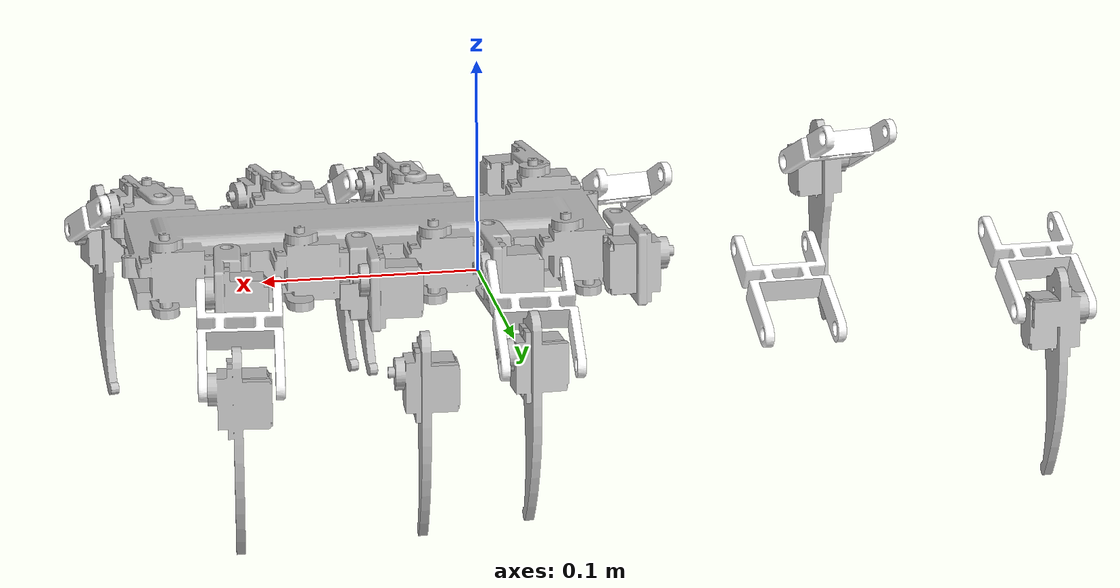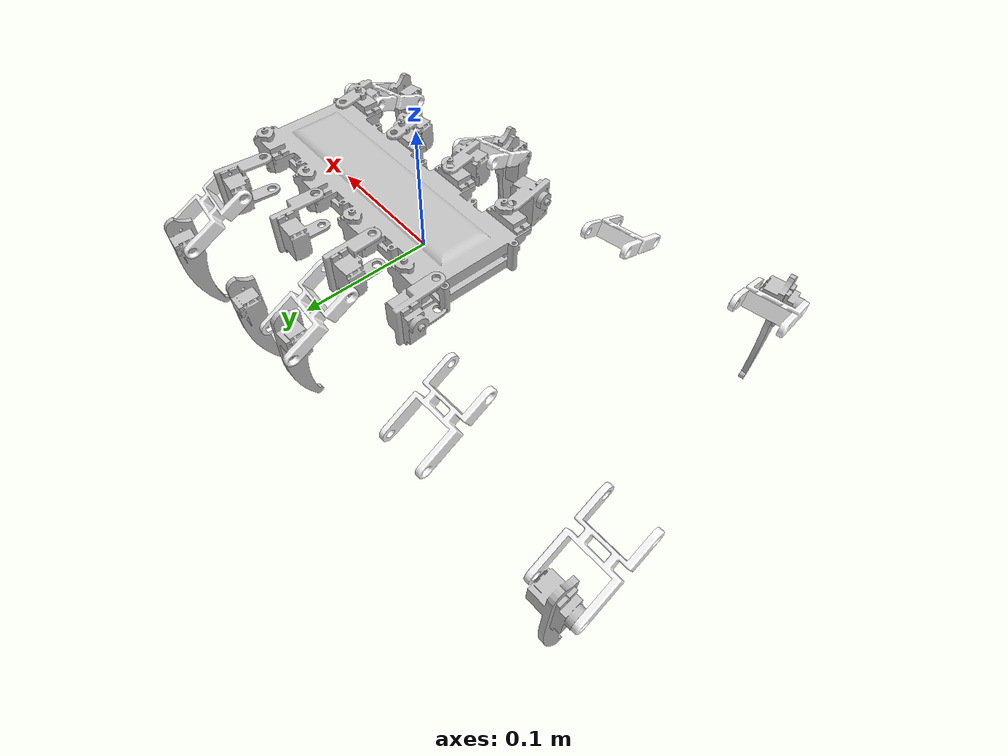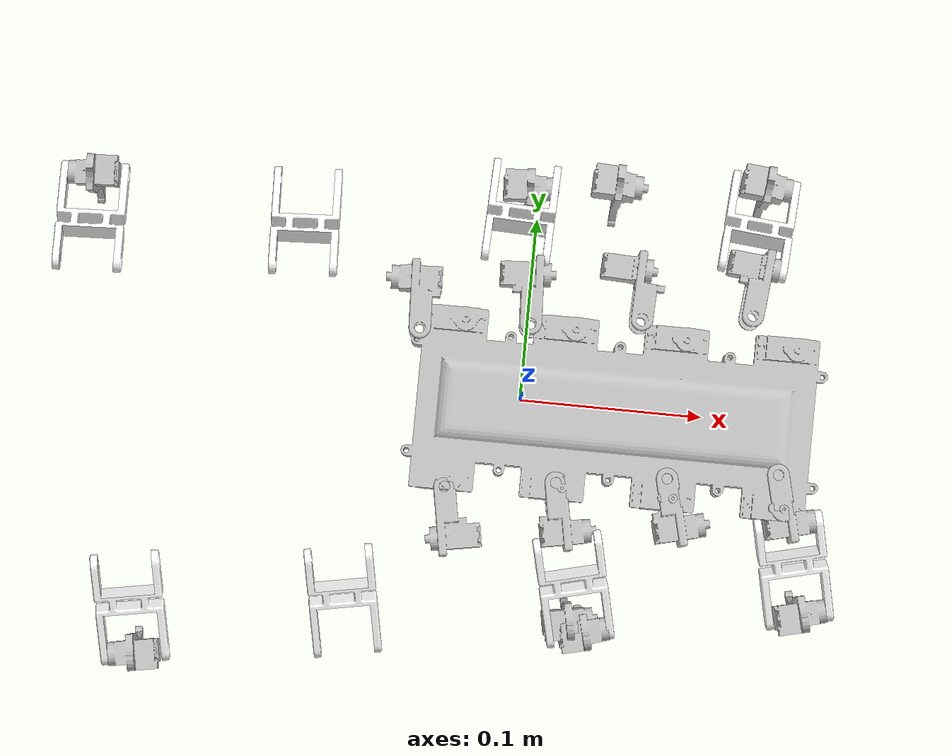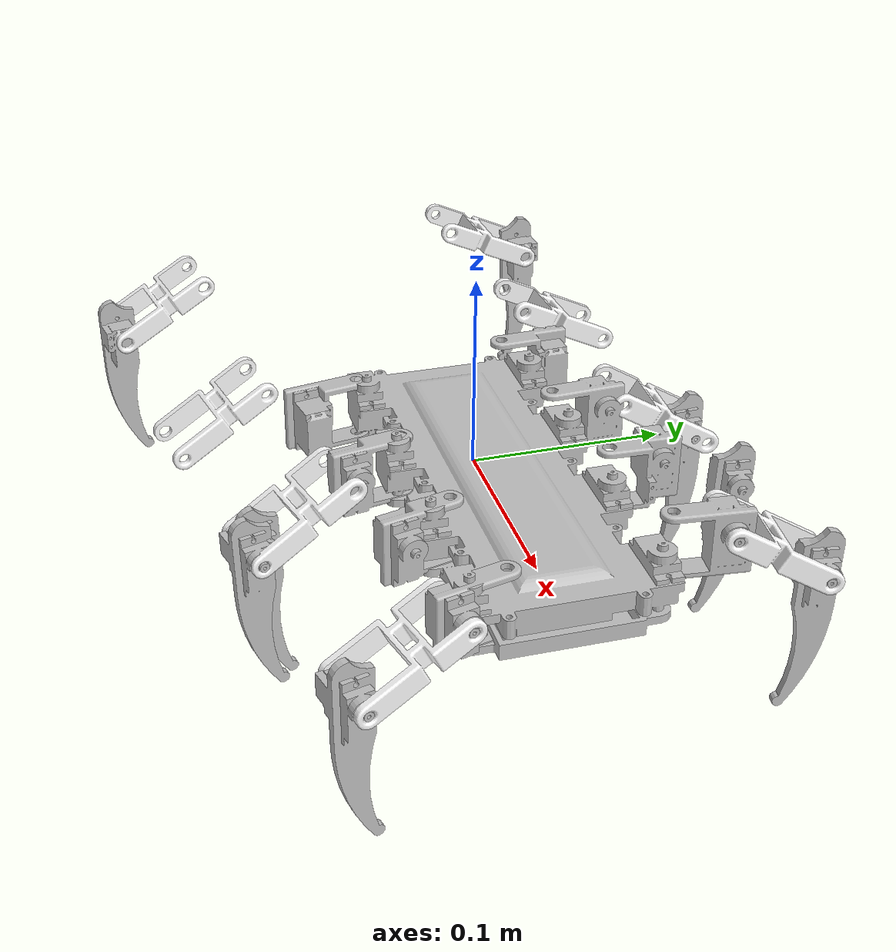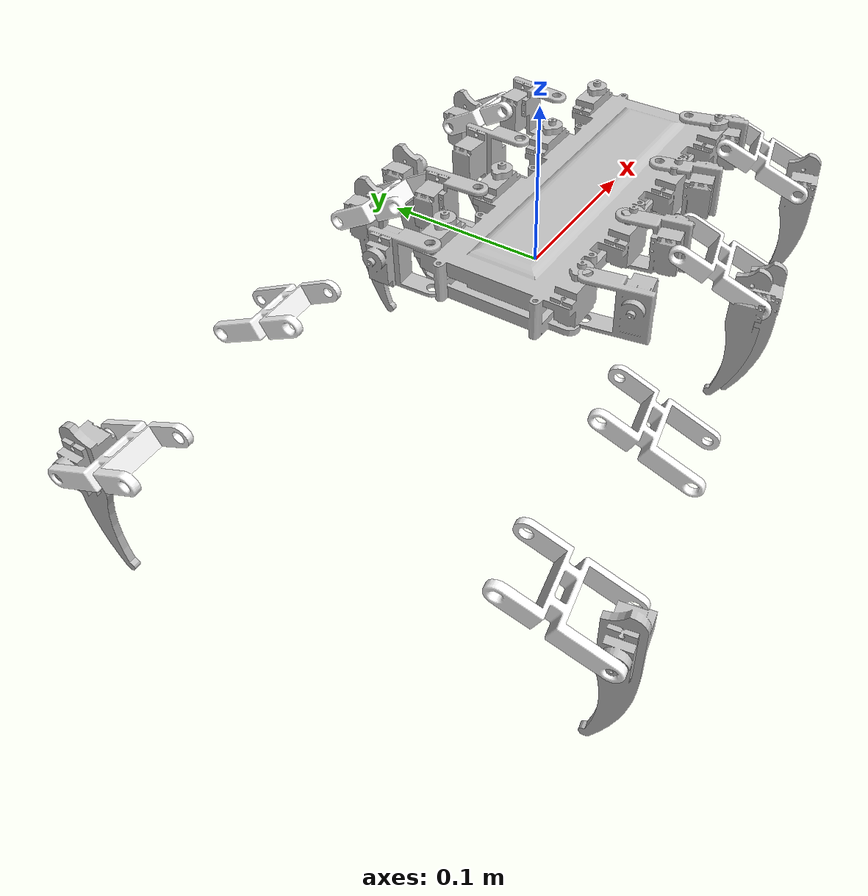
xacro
<robot name="spider_description">
  <link name="dummy_base" />

  <joint name="dummy_base_to_base_link" type="fixed">
    <parent link="dummy_base" />
    <child link="base_link" />
    <origin xyz="0 0 0" rpy="0 0 0" />
  </joint>
  <link name="base_link">
    <inertial>
      <origin xyz="0.0419124697856288 0.0129912705123136 -0.00194512919498489" rpy="0 0 0" />
      <mass value="0.206593361987693" />
      <inertia ixx="0.000100835459421752" ixy="3.3190326442876E-07" ixz="6.85143109069958E-05" iyy="0.000699628428109392" iyz="-7.47632670675628E-08" izz="0.000612159753876248" />
    </inertial>
    <visual>
      <origin xyz="0 0 0" rpy="0 0 0" />
      <geometry>
        <mesh filename="file://$(find spider_description)/meshes/visual/base_link.STL" />
      </geometry>
      <material name="">
        <color rgba="0.752941176470588 0.752941176470588 0.752941176470588 1" />
      </material>
    </visual>
    <collision>
      <origin xyz="0 0 0" rpy="0 0 0" />
      <geometry>
        <mesh filename="file://$(find spider_description)/meshes/collision/base_link.STL" />
      </geometry>
    </collision>
  </link>
  <link name="RL1_coxa">
    <inertial>
      <origin xyz="-0.00349163991648843 0.0172300072694273 0.024439051068252" rpy="0 0 0" />
      <mass value="0.0118214563639757" />
      <inertia ixx="1.54720113656629E-06" ixy="-3.57556957341545E-08" ixz="-4.0276165283765E-08" iyy="1.03828170219183E-06" iyz="-8.80235914490984E-10" izz="1.47258336300693E-06" />
    </inertial>
    <visual>
      <origin xyz="0 0 0" rpy="0 0 0" />
      <geometry>
        <mesh filename="file://$(find spider_description)/meshes/visual/RL1_coxa.STL" />
      </geometry>
      <material name="">
        <color rgba="0.752941176470588 0.752941176470588 0.752941176470588 1" />
      </material>
    </visual>
    <collision>
      <origin xyz="0 0 0" rpy="0 0 0" />
      <geometry>
        <mesh filename="file://$(find spider_description)/meshes/collision/RL1_coxa.STL" />
      </geometry>
    </collision>
  </link>
  <joint name="joint1_coxa" type="continuous">
    <origin xyz="0.143023923046985 -0.028827601978856 0.00180390069504784" rpy="1.5707963267949 0 0.456646809528589" />
    <parent link="base_link" />
    <child link="RL1_coxa" />
    <axis xyz="0 1 0" />
  </joint>
  <link name="RL1_fumer">
    <inertial>
      <origin xyz="-0.0264233888332986 6.93889390390723E-18 -0.00234030420177805" rpy="0 0 0" />
      <mass value="0.00732061922605988" />
      <inertia ixx="1.66034801156124E-06" ixy="1.00585162486448E-21" ixz="-1.49987503139991E-09" iyy="3.33489508651991E-06" iyz="1.04555629426703E-21" izz="1.85153973126671E-06" />
    </inertial>
    <visual>
      <origin xyz="0 0 0" rpy="0 0 0" />
      <geometry>
        <mesh filename="file://$(find spider_description)/meshes/visual/RL1_fumer.STL" />
      </geometry>
      <material name="">
        <color rgba="1 1 1 1" />
      </material>
    </visual>
    <collision>
      <origin xyz="0 0 0" rpy="0 0 0" />
      <geometry>
        <mesh filename="file://$(find spider_description)/meshes/collision/RL1_fumer.STL" />
      </geometry>
    </collision>
  </link>
  <joint name="joint1_fumer" type="continuous">
    <origin xyz="-0.00591979008225604 0.0221000000000001 0.026855280400361" rpy="-2.03537963970565 1.06963032129347 1.15667679281028" />
    <parent link="RL1_coxa" />
    <child link="RL1_fumer" />
    <axis xyz="0 0 1" />
  </joint>
  <link name="RL1_tibia">
    <inertial>
      <origin xyz="0.00260154719028149 -0.013097537565338 0.000727426101389261" rpy="0 0 0" />
      <mass value="0.0131238915671885" />
      <inertia ixx="4.22996621859555E-06" ixy="1.19149405996142E-07" ixz="-1.17548949137053E-08" iyy="7.82194141970863E-07" iyz="-2.83284562385563E-07" izz="4.4245594105805E-06" />
    </inertial>
    <visual>
      <origin xyz="0 0 0" rpy="0 0 0" />
      <geometry>
        <mesh filename="file://$(find spider_description)/meshes/visual/RL1_tibia.STL" />
      </geometry>
      <material name="">
        <color rgba="0.752941176470588 0.752941176470588 0.752941176470588 1" />
      </material>
    </visual>
    <collision>
      <origin xyz="0 0 0" rpy="0 0 0" />
      <geometry>
        <mesh filename="file://$(find spider_description)/meshes/collision/RL1_tibia.STL" />
      </geometry>
    </collision>
  </link>
  <joint name="joint1_tibia" type="continuous">
    <origin xyz="-0.055 0 0" rpy="3.14159265358979 1.35383304701328 0.455416754848752" />
    <parent link="RL1_fumer" />
    <child link="RL1_tibia" />
    <axis xyz="0.976555650922224 0 0.215265093900221" />
  </joint>
  <link name="RL2_coxa">
    <inertial>
      <origin xyz="-0.00137410359807341 0.0172300072704422 0.0246489473554496" rpy="0 0 0" />
      <mass value="0.0118214563661804" />
      <inertia ixx="1.53973680405956E-06" ixy="-3.56986723887601E-08" ixz="-4.6080637183373E-08" iyy="1.0382817023383E-06" iyz="2.2021308274049E-09" izz="1.4800476962292E-06" />
    </inertial>
    <visual>
      <origin xyz="0 0 0" rpy="0 0 0" />
      <geometry>
        <mesh filename="file://$(find spider_description)/meshes/visual/RL2_coxa.STL" />
      </geometry>
      <material name="">
        <color rgba="0.752941176470588 0.752941176470588 0.752941176470588 1" />
      </material>
    </visual>
    <collision>
      <origin xyz="0 0 0" rpy="0 0 0" />
      <geometry>
        <mesh filename="file://$(find spider_description)/meshes/collision/RL2_coxa.STL" />
      </geometry>
    </collision>
  </link>
  <joint name="joint2_coxa" type="continuous">
    <origin xyz="0.0830253362173002 -0.0366006051591393 0.00180390069504788" rpy="1.5707963267949 0 0.371215936961481" />
    <parent link="base_link" />
    <child link="RL2_coxa" />
    <axis xyz="0 1 0" />
  </joint>
  <link name="RL2_fumer">
    <inertial>
      <origin xyz="-0.0264233888332985 0 -0.00234030420177726" rpy="0 0 0" />
      <mass value="0.00732061922605988" />
      <inertia ixx="1.66034801156124E-06" ixy="3.70576914423756E-22" ixz="-1.49987503139454E-09" iyy="3.33489508651991E-06" iyz="-2.5146290621612E-22" izz="1.85153973126671E-06" />
    </inertial>
    <visual>
      <origin xyz="0 0 0" rpy="0 0 0" />
      <geometry>
        <mesh filename="file://$(find spider_description)/meshes/visual/RL2_fumer.STL" />
      </geometry>
      <material name="">
        <color rgba="1 1 1 1" />
      </material>
    </visual>
    <collision>
      <origin xyz="0 0 0" rpy="0 0 0" />
      <geometry>
        <mesh filename="file://$(find spider_description)/meshes/collision/RL2_fumer.STL" />
      </geometry>
    </collision>
  </link>
  <joint name="joint2_fumer" type="continuous">
    <origin xyz="-0.00358516044020296 0.0220999999999999 0.0272653007432159" rpy="-1.84005724604345 1.0586197588623 1.33473036772911" />
    <parent link="RL2_coxa" />
    <child link="RL2_fumer" />
    <axis xyz="0 0 1" />
  </joint>
  <link name="RL2_tibia">
    <inertial>
      <origin xyz="0.00373414734956586 -0.0130839594099826 0.00111120240408577" rpy="0 0 0" />
      <mass value="0.0131238915536145" />
      <inertia ixx="4.23019149640981E-06" ixy="7.84253770640042E-08" ixz="1.01978479704144E-09" iyy="7.6533847696787E-07" iyz="-1.63714108486507E-07" izz="4.44118979210614E-06" />
    </inertial>
    <visual>
      <origin xyz="0 0 0" rpy="0 0 0" />
      <geometry>
        <mesh filename="file://$(find spider_description)/meshes/visual/RL2_tibia.STL" />
      </geometry>
      <material name="">
        <color rgba="0.752941176470588 0.752941176470588 0.752941176470588 1" />
      </material>
    </visual>
    <collision>
      <origin xyz="0 0 0" rpy="0 0 0" />
      <geometry>
        <mesh filename="file://$(find spider_description)/meshes/collision/RL2_tibia.STL" />
      </geometry>
    </collision>
  </link>
  <joint name="joint2_tibia" type="continuous">
    <origin xyz="-0.055 0 0" rpy="-3.14159265358979 1.4400547052635 0.436973540292822" />
    <parent link="RL2_fumer" />
    <child link="RL2_tibia" />
    <axis xyz="0.991465481571485 0 0.130369470552824" />
  </joint>
  <link name="RL3_coxa">
    <inertial>
      <origin xyz="0.00349358017075859 0.01723000702548 0.0244387737829021" rpy="0 0 0" />
      <mass value="0.0118214556819711" />
      <inertia ixx="1.51968692035686E-06" ixy="-3.45709549158988E-08" ixz="-5.40202304528258E-08" iyy="1.03828165876939E-06" iyz="9.17031077224167E-09" izz="1.50009735512406E-06" />
    </inertial>
    <visual>
      <origin xyz="0 0 0" rpy="0 0 0" />
      <geometry>
        <mesh filename="file://$(find spider_description)/meshes/visual/RL3_coxa.STL" />
      </geometry>
      <material name="">
        <color rgba="0.752941176470588 0.752941176470588 0.752941176470588 1" />
      </material>
    </visual>
    <collision>
      <origin xyz="0 0 0" rpy="0 0 0" />
      <geometry>
        <mesh filename="file://$(find spider_description)/meshes/collision/RL3_coxa.STL" />
      </geometry>
    </collision>
  </link>
  <joint name="joint3_coxa" type="continuous">
    <origin xyz="0.0230267493876147 -0.0443736083394228 0.00180390069504786" rpy="1.5707963267949 0 0.115999004572643" />
    <parent link="base_link" />
    <child link="RL3_coxa" />
    <axis xyz="0 1 0" />
  </joint>
  <link name="RL3_fumer">
    <inertial>
      <origin xyz="-0.0190060888231168 -0.0093450118645113 -0.00493699671842929" rpy="0 0 0" />
      <mass value="0.00732061922605988" />
      <inertia ixx="1.66034801156124E-06" ixy="-8.470329472543E-22" ixz="-1.4998750313965E-09" iyy="3.33489508651991E-06" iyz="-6.61744490042422E-23" izz="1.85153973126671E-06" />
    </inertial>
    <visual>
      <origin xyz="0 0 0" rpy="0 0 0" />
      <geometry>
        <mesh filename="file://$(find spider_description)/meshes/visual/RL3_fumer.STL" />
      </geometry>
      <material name="">
        <color rgba="1 1 1 1" />
      </material>
    </visual>
    <collision>
      <origin xyz="0 0 0" rpy="0 0 0" />
      <geometry>
        <mesh filename="file://$(find spider_description)/meshes/collision/RL3_fumer.STL" />
      </geometry>
    </collision>
  </link>
  <joint name="joint3_fumer" type="continuous">
    <origin xyz="-0.000624989213601535 0.0103198993706474 0.0294985850073072" rpy="-1.43474773528477 1.05506840370706 1.68932703577979" />
    <parent link="RL3_coxa" />
    <child link="RL3_fumer" />
    <axis xyz="0 0 1" />
  </joint>
  <link name="RL3_tibia">
    <inertial>
      <origin xyz="0.00531436167769063 -0.0130894520266102 0.000128909648472023" rpy="0 0 0" />
      <mass value="0.013123891554142" />
      <inertia ixx="4.23878064857726E-06" ixy="4.20082179122996E-08" ixz="4.18757972044376E-08" iyy="7.69154455506806E-07" iyz="-2.12494162555612E-07" izz="4.42878466326275E-06" />
    </inertial>
    <visual>
      <origin xyz="0 0 0" rpy="0 0 0" />
      <geometry>
        <mesh filename="file://$(find spider_description)/meshes/visual/RL3_tibia.STL" />
      </geometry>
      <material name="">
        <color rgba="0.752941176470588 0.752941176470588 0.752941176470588 1" />
      </material>
    </visual>
    <collision>
      <origin xyz="0 0 0" rpy="0 0 0" />
      <geometry>
        <mesh filename="file://$(find spider_description)/meshes/collision/RL3_tibia.STL" />
      </geometry>
    </collision>
  </link>
  <joint name="joint3_tibia" type="continuous">
    <origin xyz="-0.0475826999898183 -0.0093450118645113 0" rpy="0 1.50385829483433 -2.6917648290032" />
    <parent link="RL3_fumer" />
    <child link="RL3_tibia" />
    <axis xyz="0.997760486341758 0 -0.0668880549504796" />
  </joint>
  <link name="RL4_coxa">
    <inertial>
      <origin xyz="0.000221643431956145 0.0172339886263365 0.024773862822896" rpy="0 0 0" />
      <mass value="0.0118311142541974" />
      <inertia ixx="1.51589405750511E-06" ixy="3.36933854050161E-08" ixz="5.44221416465647E-08" iyy="1.03946598429508E-06" iyz="1.04056213225627E-08" izz="1.50574501931213E-06" />
    </inertial>
    <visual>
      <origin xyz="0 0 0" rpy="0 0 0" />
      <geometry>
        <mesh filename="file://$(find spider_description)/meshes/visual/RL4_coxa.STL" />
      </geometry>
      <material name="">
        <color rgba="0.752941176470588 0.752941176470588 0.752941176470588 1" />
      </material>
    </visual>
    <collision>
      <origin xyz="0 0 0" rpy="0 0 0" />
      <geometry>
        <mesh filename="file://$(find spider_description)/meshes/collision/RL4_coxa.STL" />
      </geometry>
    </collision>
  </link>
  <joint name="joint4_coxa" type="continuous">
    <origin xyz="-0.0369718374420689 -0.0521466115197065 0.00180390069504695" rpy="1.5707963267949 0 0.279272825129561" />
    <parent link="base_link" />
    <child link="RL4_coxa" />
    <axis xyz="0 1 0" />
  </joint>
  <link name="RL4_fumer">
    <inertial>
      <origin xyz="-0.0264233888332986 -1.38777878078145E-17 0.00455969579822089" rpy="0 0 0" />
      <mass value="0.00732061922605989" />
      <inertia ixx="1.66034801156124E-06" ixy="-1.11173074327127E-21" ixz="-1.49987503139615E-09" iyy="3.33489508651992E-06" iyz="-8.73502726855997E-22" izz="1.85153973126671E-06" />
    </inertial>
    <visual>
      <origin xyz="0 0 0" rpy="0 0 0" />
      <geometry>
        <mesh filename="file://$(find spider_description)/meshes/visual/RL4_fumer.STL" />
      </geometry>
      <material name="">
        <color rgba="1 1 1 1" />
      </material>
    </visual>
    <collision>
      <origin xyz="0 0 0" rpy="0 0 0" />
      <geometry>
        <mesh filename="file://$(find spider_description)/meshes/collision/RL4_fumer.STL" />
      </geometry>
    </collision>
  </link>
  <joint name="joint4_fumer" type="continuous">
    <origin xyz="-0.00289047043580869 0.0221000000000014 0.0273476723078892" rpy="1.34757833958992 1.0760490052699 1.37361152936902" />
    <parent link="RL4_coxa" />
    <child link="RL4_fumer" />
    <axis xyz="0 0 1" />
  </joint>
  <link name="RL4_tibia">
    <inertial>
      <origin xyz="0.0046194323285307 -0.0124119057556658 -0.00371988245181533" rpy="0 0 0" />
      <mass value="0.0131238915753325" />
      <inertia ixx="4.23942335586469E-06" ixy="1.02033759025192E-07" ixz="-4.08466826831512E-09" iyy="1.36774622353105E-06" iyz="-1.36758688276913E-06" izz="3.82955019670378E-06" />
    </inertial>
    <visual>
      <origin xyz="0 0 0" rpy="0 0 0" />
      <geometry>
        <mesh filename="file://$(find spider_description)/meshes/visual/RL4_tibia.STL" />
      </geometry>
      <material name="">
        <color rgba="0.752941176470588 0.752941176470588 0.752941176470588 1" />
      </material>
    </visual>
    <collision>
      <origin xyz="0 0 0" rpy="0 0 0" />
      <geometry>
        <mesh filename="file://$(find spider_description)/meshes/collision/RL4_tibia.STL" />
      </geometry>
    </collision>
  </link>
  <joint name="joint4_tibia" type="continuous">
    <origin xyz="-0.0550000000000001 0 0" rpy="0 -1.4654938088774 -0.809353512947539" />
    <parent link="RL4_fumer" />
    <child link="RL4_tibia" />
    <axis xyz="0.994460811195995 0 0.105108015847522" />
  </joint>
  <link name="LL1_coxa">
    <inertial>
      <origin xyz="0.0170998824043466 0.0172339901017211 -0.017927284271033" rpy="0 0 0" />
      <mass value="0.0118311172441887" />
      <inertia ixx="1.45657003099262E-06" ixy="-1.69225042702206E-08" ixz="6.66881674443564E-09" iyy="1.03946612492756E-06" iyz="-3.09376104608946E-08" izz="1.5650694795515E-06" />
    </inertial>
    <visual>
      <origin xyz="0 0 0" rpy="0 0 0" />
      <geometry>
        <mesh filename="file://$(find spider_description)/meshes/visual/LL1_coxa.STL" />
      </geometry>
      <material name="">
        <color rgba="0.752941176470588 0.752941176470588 0.752941176470588 1" />
      </material>
    </visual>
    <collision>
      <origin xyz="0 0 0" rpy="0 0 0" />
      <geometry>
        <mesh filename="file://$(find spider_description)/meshes/collision/LL1_coxa.STL" />
      </geometry>
    </collision>
  </link>
  <joint name="joint5_coxa" type="continuous">
    <origin xyz="0.121433238114814 0.0561023239846096 0.00180390069504789" rpy="1.5707963267949 0 0.779171496523206" />
    <parent link="base_link" />
    <child link="LL1_coxa" />
    <axis xyz="0 1 0" />
  </joint>
  <link name="LL1_fumer">
    <inertial>
      <origin xyz="-0.0264233888332985 0 0.00455969579822237" rpy="0 0 0" />
      <mass value="0.00732061922605988" />
      <inertia ixx="1.66034801156124E-06" ixy="5.29395592033938E-22" ixz="-1.49987503139699E-09" iyy="3.33489508651991E-06" iyz="-4.2351647362715E-22" izz="1.85153973126671E-06" />
    </inertial>
    <visual>
      <origin xyz="0 0 0" rpy="0 0 0" />
      <geometry>
        <mesh filename="file://$(find spider_description)/meshes/visual/LL1_fumer.STL" />
      </geometry>
      <material name="">
        <color rgba="1 1 1 1" />
      </material>
    </visual>
    <collision>
      <origin xyz="0 0 0" rpy="0 0 0" />
      <geometry>
        <mesh filename="file://$(find spider_description)/meshes/collision/LL1_fumer.STL" />
      </geometry>
    </collision>
  </link>
  <joint name="joint5_fumer" type="continuous">
    <origin xyz="0.0211255891188228 0.0221 -0.0176056662578466" rpy="-2.73801909944616 -0.582101669425183 2.48122445090949" />
    <parent link="LL1_coxa" />
    <child link="LL1_fumer" />
    <axis xyz="0 0 1" />
  </joint>
  <link name="LL1_tibia">
    <inertial>
      <origin xyz="-0.00279894329842953 -0.0130976389443435 -0.00313843570289792" rpy="0 0 0" />
      <mass value="0.0131238945399001" />
      <inertia ixx="4.36602557276728E-06" ixy="-2.59110541265302E-07" ixz="-7.85276269962679E-08" iyy="7.97432719732035E-07" iyz="2.87128419374741E-07" izz="4.27326198471528E-06" />
    </inertial>
    <visual>
      <origin xyz="0 0 0" rpy="0 0 0" />
      <geometry>
        <mesh filename="file://$(find spider_description)/meshes/visual/LL1_tibia.STL" />
      </geometry>
      <material name="">
        <color rgba="0.752941176470588 0.752941176470588 0.752941176470588 1" />
      </material>
    </visual>
    <collision>
      <origin xyz="0 0 0" rpy="0 0 0" />
      <geometry>
        <mesh filename="file://$(find spider_description)/meshes/collision/LL1_tibia.STL" />
      </geometry>
    </collision>
  </link>
  <joint name="joint5_tibia" type="continuous">
    <origin xyz="-0.0549999999999999 0 0" rpy="-3.14159265358979 0.69476645340304 2.60363290009658" />
    <parent link="LL1_fumer" />
    <child link="LL1_tibia" />
    <axis xyz="0.640206045739845 0 0.768203240684489" />
  </joint>
  <link name="LL2_coxa">
    <inertial>
      <origin xyz="0.0127223100660754 0.0169176353715654 -0.0226841740829874" rpy="0 0 0" />
      <mass value="0.0118311161508981" />
      <inertia ixx="1.56088144680102E-06" ixy="-2.81600783319572E-08" ixz="2.19394756026617E-08" iyy="1.03946603017998E-06" iyz="-2.12253461630087E-08" izz="1.46075766684656E-06" />
    </inertial>
    <visual>
      <origin xyz="0 0 0" rpy="0 0 0" />
      <geometry>
        <mesh filename="file://$(find spider_description)/meshes/visual/LL2_coxa.STL" />
      </geometry>
      <material name="">
        <color rgba="0.752941176470588 0.752941176470588 0.752941176470588 1" />
      </material>
    </visual>
    <collision>
      <origin xyz="0 0 0" rpy="0 0 0" />
      <geometry>
        <mesh filename="file://$(find spider_description)/meshes/collision/LL2_coxa.STL" />
      </geometry>
    </collision>
  </link>
  <joint name="joint6_coxa" type="continuous">
    <origin xyz="0.0614346512851298 0.0483293208043272 0.00180390069504796" rpy="1.5707963267949 0 0.799360343333685" />
    <parent link="base_link" />
    <child link="LL2_coxa" />
    <axis xyz="0 1 0" />
  </joint>
  <link name="LL2_fumer">
    <inertial>
      <origin xyz="-0.0264233888332986 0 0.0120596957982234" rpy="0 0 0" />
      <mass value="0.00732061922605988" />
      <inertia ixx="1.66034801156124E-06" ixy="1.05879118406788E-22" ixz="-1.49987503139611E-09" iyy="3.33489508651991E-06" iyz="5.09543257332665E-22" izz="1.85153973126671E-06" />
    </inertial>
    <visual>
      <origin xyz="0 0 0" rpy="0 0 0" />
      <geometry>
        <mesh filename="file://$(find spider_description)/meshes/visual/LL2_fumer.STL" />
      </geometry>
      <material name="">
        <color rgba="1 1 1 1" />
      </material>
    </visual>
    <collision>
      <origin xyz="0 0 0" rpy="0 0 0" />
      <geometry>
        <mesh filename="file://$(find spider_description)/meshes/collision/LL2_fumer.STL" />
      </geometry>
    </collision>
  </link>
  <joint name="joint6_fumer" type="continuous">
    <origin xyz="0.0204800515080549 0.0220999999999997 -0.0183525881070598" rpy="-2.71143718885399 -0.610479400867026 2.46663802210369" />
    <parent link="LL2_coxa" />
    <child link="LL2_fumer" />
    <axis xyz="0 0 1" />
  </joint>
  <link name="LL2_tibia">
    <inertial>
      <origin xyz="-0.00780217032358205 -0.01309839267037 -0.00872256326972962" rpy="0 0 0" />
      <mass value="0.0131238944675766" />
      <inertia ixx="4.36428717131208E-06" ixy="-2.17234269804496E-07" ixz="-8.58852825162038E-08" iyy="7.89056187070732E-07" iyz="2.6858651802412E-07" izz="4.28337690198118E-06" />
    </inertial>
    <visual>
      <origin xyz="0 0 0" rpy="0 0 0" />
      <geometry>
        <mesh filename="file://$(find spider_description)/meshes/visual/LL2_tibia.STL" />
      </geometry>
      <material name="">
        <color rgba="0.752941176470588 0.752941176470588 0.752941176470588 1" />
      </material>
    </visual>
    <collision>
      <origin xyz="0 0 0" rpy="0 0 0" />
      <geometry>
        <mesh filename="file://$(find spider_description)/meshes/collision/LL2_tibia.STL" />
      </geometry>
    </collision>
  </link>
  <joint name="joint6_tibia" type="continuous">
    <origin xyz="-0.055 0 0" rpy="3.14159265358979 0.730667432781409 2.63033642671627" />
    <parent link="LL2_fumer" />
    <child link="LL2_tibia" />
    <axis xyz="0.667366840256722 0 0.744729145747472" />
  </joint>
  <link name="LL3_coxa">
    <inertial>
      <origin xyz="0.0139602506469437 0.0172339889077581 -0.0204671641770284" rpy="0 0 0" />
      <mass value="0.0118311133553872" />
      <inertia ixx="1.46157125552418E-06" ixy="-2.17239736681064E-08" ixz="2.37095607651922E-08" iyy="1.0394659305145E-06" iyz="-2.77774755690175E-08" izz="1.56006751193327E-06" />
    </inertial>
    <visual>
      <origin xyz="0 0 0" rpy="0 0 0" />
      <geometry>
        <mesh filename="file://$(find spider_description)/meshes/visual/LL3_coxa.STL" />
      </geometry>
      <material name="">
        <color rgba="0.752941176470588 0.752941176470588 0.752941176470588 1" />
      </material>
    </visual>
    <collision>
      <origin xyz="0 0 0" rpy="0 0 0" />
      <geometry>
        <mesh filename="file://$(find spider_description)/meshes/collision/LL3_coxa.STL" />
      </geometry>
    </collision>
  </link>
  <joint name="joint7_coxa" type="continuous">
    <origin xyz="0.00143606445544368 0.0405563176240433 0.0018039006950479" rpy="1.5707963267949 0 0.762566282617874" />
    <parent link="base_link" />
    <child link="LL3_coxa" />
    <axis xyz="0 1 0" />
  </joint>
  <link name="LL3_fumer">
    <inertial>
      <origin xyz="-0.0264233888332985 -1.38777878078145E-17 0.00455969579822281" rpy="0 0 0" />
      <mass value="0.00732061922605988" />
      <inertia ixx="1.66034801156124E-06" ixy="-6.88214269644119E-22" ixz="-1.49987503139482E-09" iyy="3.3348950865199E-06" iyz="-2.64697796016969E-22" izz="1.85153973126671E-06" />
    </inertial>
    <visual>
      <origin xyz="0 0 0" rpy="0 0 0" />
      <geometry>
        <mesh filename="file://$(find spider_description)/meshes/visual/LL3_fumer.STL" />
      </geometry>
      <material name="">
        <color rgba="1 1 1 1" />
      </material>
    </visual>
    <collision>
      <origin xyz="0 0 0" rpy="0 0 0" />
      <geometry>
        <mesh filename="file://$(find spider_description)/meshes/collision/LL3_fumer.STL" />
      </geometry>
    </collision>
  </link>
  <joint name="joint7_fumer" type="continuous">
    <origin xyz="0.0179847256047489 0.0221 -0.0208038372643574" rpy="-2.66841470881931 -0.745546268941601 2.49508842776342" />
    <parent link="LL3_coxa" />
    <child link="LL3_fumer" />
    <axis xyz="0 0 1" />
  </joint>
  <link name="LL3_tibia">
    <inertial>
      <origin xyz="-0.00309435726524095 -0.00999543050929356 -0.00304937467236494" rpy="0 0 0" />
      <mass value="0.0211237959439876" />
      <inertia ixx="4.9950866400634E-06" ixy="-1.39393620012794E-07" ixz="-2.67338640754455E-07" iyy="1.32635281980292E-06" iyz="1.78140060908311E-07" izz="5.01286567504397E-06" />
    </inertial>
    <visual>
      <origin xyz="0 0 0" rpy="0 0 0" />
      <geometry>
        <mesh filename="file://$(find spider_description)/meshes/visual/LL3_tibia.STL" />
      </geometry>
      <material name="">
        <color rgba="0.752941176470588 0.752941176470588 0.752941176470588 1" />
      </material>
    </visual>
    <collision>
      <origin xyz="0 0 0" rpy="0 0 0" />
      <geometry>
        <mesh filename="file://$(find spider_description)/meshes/collision/LL3_tibia.STL" />
      </geometry>
    </collision>
  </link>
  <joint name="joint7_tibia" type="continuous">
    <origin xyz="-0.0549999999999996 0 0" rpy="-3.14159265358979 0.857949539202521 2.68310369735863" />
    <parent link="LL3_fumer" />
    <child link="LL3_tibia" />
    <axis xyz="0.756503173249345 0 0.65399002199091" />
  </joint>
  <link name="LL4_coxa">
    <inertial>
      <origin xyz="0.000589847914708751 0.0172300062160811 -0.0246801710520806" rpy="0 0 0" />
      <mass value="0.0118214537178174" />
      <inertia ixx="1.5367477651219E-06" ixy="3.56106725590858E-08" ixz="-4.78840582046048E-08" iyy="1.03828151740302E-06" iyz="-3.33597281018614E-09" izz="1.48303585401202E-06" />
    </inertial>
    <visual>
      <origin xyz="0 0 0" rpy="0 0 0" />
      <geometry>
        <mesh filename="file://$(find spider_description)/meshes/visual/LL4_coxa.STL" />
      </geometry>
      <material name="">
        <color rgba="0.752941176470588 0.752941176470588 0.752941176470588 1" />
      </material>
    </visual>
    <collision>
      <origin xyz="0 0 0" rpy="0 0 0" />
      <geometry>
        <mesh filename="file://$(find spider_description)/meshes/collision/LL4_coxa.STL" />
      </geometry>
    </collision>
  </link>
  <joint name="joint8_coxa" type="continuous">
    <origin xyz="-0.058562522374242 0.0327833144437591 0.00180390069504791" rpy="1.5707963267949 0 0.138794201888939" />
    <parent link="base_link" />
    <child link="LL4_coxa" />
    <axis xyz="0 1 0" />
  </joint>
  <link name="LL4_fumer">
    <inertial>
      <origin xyz="-0.0264233888332986 6.93889390390723E-18 -0.00234030420177728" rpy="0 0 0" />
      <mass value="0.00732061922605988" />
      <inertia ixx="1.66034801156124E-06" ixy="8.470329472543E-22" ixz="-1.49987503139453E-09" iyy="3.33489508651992E-06" iyz="-4.96308367531817E-23" izz="1.85153973126671E-06" />
    </inertial>
    <visual>
      <origin xyz="0 0 0" rpy="0 0 0" />
      <geometry>
        <mesh filename="file://$(find spider_description)/meshes/visual/LL4_fumer.STL" />
      </geometry>
      <material name="">
        <color rgba="1 1 1 1" />
      </material>
    </visual>
    <collision>
      <origin xyz="0 0 0" rpy="0 0 0" />
      <geometry>
        <mesh filename="file://$(find spider_description)/meshes/collision/LL4_fumer.STL" />
      </geometry>
    </collision>
  </link>
  <joint name="joint8_fumer" type="continuous">
    <origin xyz="0.00271661781563643 0.0220999999999999 -0.0273654889896707" rpy="1.33721860319905 -1.1298490006671 1.78272807584438" />
    <parent link="LL4_coxa" />
    <child link="LL4_fumer" />
    <axis xyz="0 0 1" />
  </joint>
  <link name="LL4_tibia">
    <inertial>
      <origin xyz="-0.00283536696605889 -0.0130639420547866 0.000369861511789499" rpy="0 0 0" />
      <mass value="0.0131238915939716" />
      <inertia ixx="4.22467226051278E-06" ixy="-1.76333801363491E-07" ixz="9.44080885180267E-09" iyy="8.58388936238902E-07" iyz="5.78334636597505E-07" izz="4.35365859002539E-06" />
    </inertial>
    <visual>
      <origin xyz="0 0 0" rpy="0 0 0" />
      <geometry>
        <mesh filename="file://$(find spider_description)/meshes/visual/LL4_tibia.STL" />
      </geometry>
      <material name="">
        <color rgba="0.752941176470588 0.752941176470588 0.752941176470588 1" />
      </material>
    </visual>
    <collision>
      <origin xyz="0 0 0" rpy="0 0 0" />
      <geometry>
        <mesh filename="file://$(find spider_description)/meshes/collision/LL4_tibia.STL" />
      </geometry>
    </collision>
  </link>
  <joint name="joint8_tibia" type="continuous">
    <origin xyz="-0.055 0 0" rpy="0 -1.36202617641292 -2.5823705934248" />
    <parent link="LL4_fumer" />
    <child link="LL4_tibia" />
    <axis xyz="0.978286549337221 0 0.207256911551514" />
  </joint>
  <ros2_control name="LeggedSystemPositionOnly" type="system">
    <hardware>
      <plugin>gz_ros2_control/GazeboSimSystem</plugin>
    </hardware>

    <joint name="joint1_coxa">
      <command_interface name="position" />
      <state_interface name="position" />
      <state_interface name="velocity" />
    </joint>
    <joint name="joint1_fumer">
      <command_interface name="position" />
      <state_interface name="position" />
      <state_interface name="velocity" />
    </joint>
    <joint name="joint1_tibia">
      <command_interface name="position" />
      <state_interface name="position" />
      <state_interface name="velocity" />
    </joint>

    <joint name="joint2_coxa">
      <command_interface name="position" />
      <state_interface name="position" />
      <state_interface name="velocity" />
    </joint>
    <joint name="joint2_fumer">
      <command_interface name="position" />
      <state_interface name="position" />
      <state_interface name="velocity" />
    </joint>
    <joint name="joint2_tibia">
      <command_interface name="position" />
      <state_interface name="position" />
      <state_interface name="velocity" />
    </joint>

    <joint name="joint3_coxa">
      <command_interface name="position" />
      <state_interface name="position" />
      <state_interface name="velocity" />
    </joint>
    <joint name="joint3_fumer">
      <command_interface name="position" />
      <state_interface name="position" />
      <state_interface name="velocity" />
    </joint>
    <joint name="joint3_tibia">
      <command_interface name="position" />
      <state_interface name="position" />
      <state_interface name="velocity" />
    </joint>

    <joint name="joint4_coxa">
      <command_interface name="position" />
      <state_interface name="position" />
      <state_interface name="velocity" />
    </joint>
    <joint name="joint4_fumer">
      <command_interface name="position" />
      <state_interface name="position" />
      <state_interface name="velocity" />
    </joint>
    <joint name="joint4_tibia">
      <command_interface name="position" />
      <state_interface name="position" />
      <state_interface name="velocity" />
    </joint>

    <joint name="joint5_coxa">
      <command_interface name="position" />
      <state_interface name="position" />
      <state_interface name="velocity" />
    </joint>
    <joint name="joint5_fumer">
      <command_interface name="position" />
      <state_interface name="position" />
      <state_interface name="velocity" />
    </joint>
    <joint name="joint5_tibia">
      <command_interface name="position" />
      <state_interface name="position" />
      <state_interface name="velocity" />
    </joint>

    <joint name="joint6_coxa">
      <command_interface name="position" />
      <state_interface name="position" />
      <state_interface name="velocity" />
    </joint>
    <joint name="joint6_fumer">
      <command_interface name="position" />
      <state_interface name="position" />
      <state_interface name="velocity" />
    </joint>
    <joint name="joint6_tibia">
      <command_interface name="position" />
      <state_interface name="position" />
      <state_interface name="velocity" />
    </joint>

    <joint name="joint7_coxa">
      <command_interface name="position" />
      <state_interface name="position" />
      <state_interface name="velocity" />
    </joint>
    <joint name="joint7_fumer">
      <command_interface name="position" />
      <state_interface name="position" />
      <state_interface name="velocity" />
    </joint>
    <joint name="joint7_tibia">
      <command_interface name="position" />
      <state_interface name="position" />
      <state_interface name="velocity" />
    </joint>

    <joint name="joint8_coxa">
      <command_interface name="position" />
      <state_interface name="position" />
      <state_interface name="velocity" />
    </joint>
    <joint name="joint8_fumer">
      <command_interface name="position" />
      <state_interface name="position" />
      <state_interface name="velocity" />
    </joint>
    <joint name="joint8_tibia">
      <command_interface name="position" />
      <state_interface name="position" />
      <state_interface name="velocity" />
    </joint>
  </ros2_control>
  <!-- ############ GAZEBO ROS2 CONTROL PLUGIN ############ -->
  <gazebo>
    <plugin name="ign_ros2_control::IgnitionROS2ControlPlugin" filename="libgz_ros2_control-system.so">
      <parameters>
      $(find spider_description)/config/controller.yaml
      </parameters>
    </plugin>
  </gazebo>

</robot>
